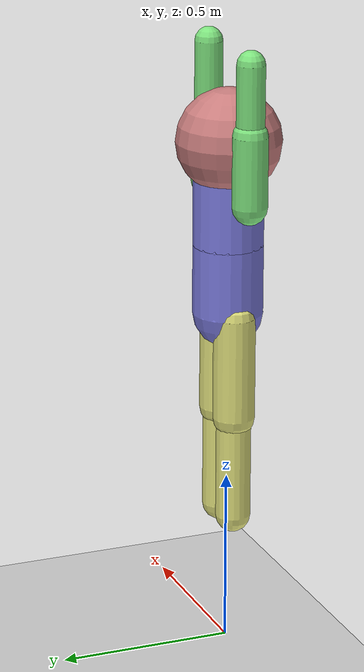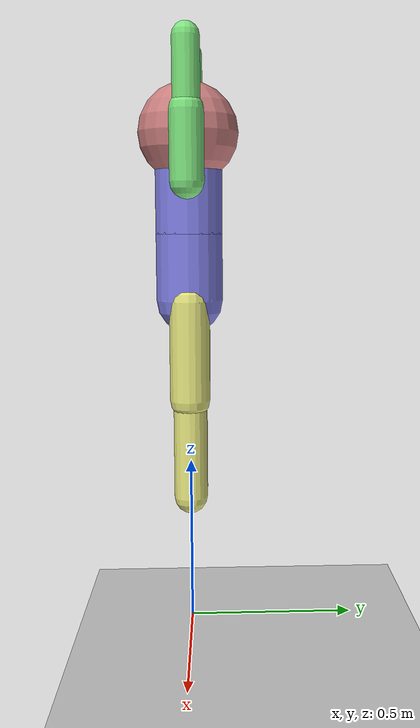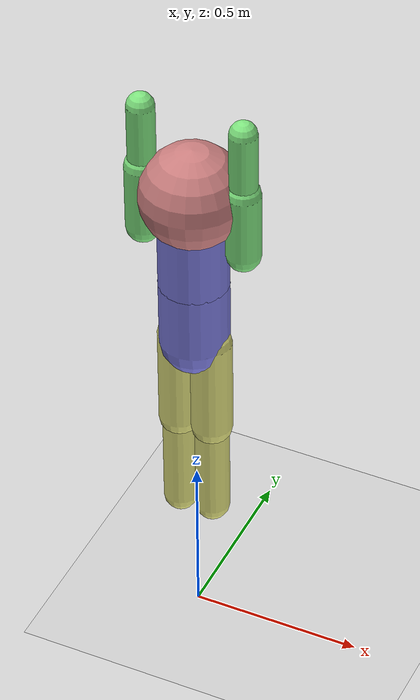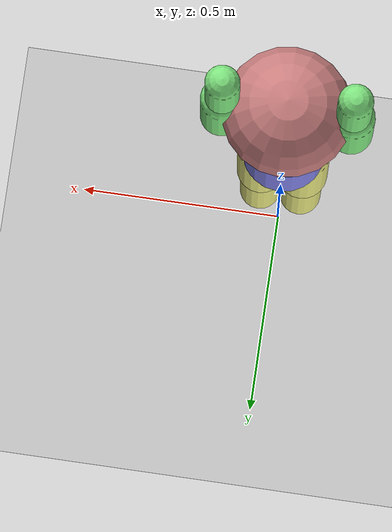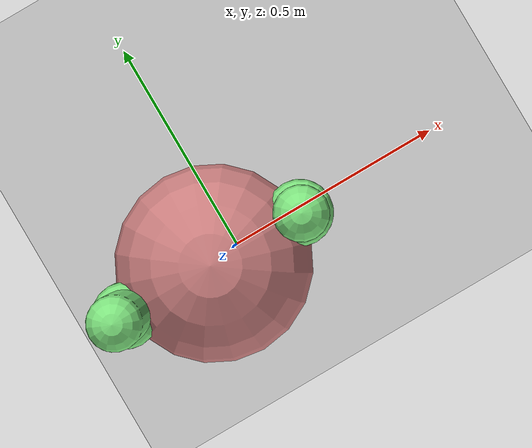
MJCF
<mujoco model="simple_humanoid">
  <compiler angle="radian" inertiafromgeom="true"/>
  <option timestep="0.005" gravity="0 0 -9.81" iterations="100" tolerance="1e-6"/>
  <visual>
    <global azimuth="135" elevation="-30" perspective="0.01"/>
  </visual>
  <worldbody>
    <light pos="0 0 5" dir="0 0 -1" diffuse="1 1 1" specular="0.1 0.1 0.1"/>
    <geom name="floor" type="plane" size="10 10 0.1" pos="0 0 0" rgba="0.8 0.8 0.8 1" condim="3"/>

    <!-- 机器人主体 -->
    <body name="pelvis" pos="0 0 1.0">
      <joint name="root" type="free"/>
      <geom name="pelvis_geom" type="capsule" size="0.1" fromto="0 0 0 0 0 0.2" rgba="0.5 0.5 0.9 1" mass="5"/>

      <body name="torso" pos="0 0 0.2">
        <geom name="torso_geom" type="capsule" size="0.1" fromto="0 0 0 0 0 0.3" rgba="0.5 0.5 0.9 1" mass="8"/>

        <body name="head" pos="0 0 0.3">
          <geom name="head_geom" type="sphere" size="0.15" pos="0 0 0" rgba="0.8 0.5 0.5 1" mass="3"/>
        </body>

        <!-- 左手臂 -->
        <body name="left_arm" pos="0.15 0 0.15">
          <joint name="left_shoulder" type="hinge" axis="1 0 0" range="-1.57 1.57"/>
          <geom name="left_upper_arm" type="capsule" size="0.05" fromto="0 0 0 0 0 0.2" rgba="0.5 0.9 0.5 1" mass="1"/>

          <body name="left_forearm" pos="0 0 0.2">
            <joint name="left_elbow" type="hinge" axis="1 0 0" range="-1.57 0"/>
            <geom name="left_forearm_geom" type="capsule" size="0.04" fromto="0 0 0 0 0 0.2" rgba="0.5 0.9 0.5 1" mass="0.5"/>
          </body>
        </body>

        <!-- 右手臂 -->
        <body name="right_arm" pos="-0.15 0 0.15">
          <joint name="right_shoulder" type="hinge" axis="1 0 0" range="-1.57 1.57"/>
          <geom name="right_upper_arm" type="capsule" size="0.05" fromto="0 0 0 0 0 0.2" rgba="0.5 0.9 0.5 1" mass="1"/>

          <body name="right_forearm" pos="0 0 0.2">
            <joint name="right_elbow" type="hinge" axis="1 0 0" range="-1.57 0"/>
            <geom name="right_forearm_geom" type="capsule" size="0.04" fromto="0 0 0 0 0 0.2" rgba="0.5 0.9 0.5 1" mass="0.5"/>
          </body>
        </body>

        <!-- 左腿部 -->
        <body name="left_leg" pos="0.05 0 -0.2">
          <joint name="left_hip" type="hinge" axis="1 0 0" range="-1.57 1.57"/>
          <geom name="left_thigh" type="capsule" size="0.06" fromto="0 0 0 0 0 -0.3" rgba="0.9 0.9 0.5 1" mass="2"/>

          <body name="left_calf" pos="0 0 -0.3">
            <joint name="left_knee" type="hinge" axis="1 0 0" range="0 1.57"/>
            <geom name="left_calf_geom" type="capsule" size="0.05" fromto="0 0 0 0 0 -0.3" rgba="0.9 0.9 0.5 1" mass="1"/>
          </body>
        </body>

        <!-- 右腿部 -->
        <body name="right_leg" pos="-0.05 0 -0.2">
          <joint name="right_hip" type="hinge" axis="1 0 0" range="-1.57 1.57"/>
          <geom name="right_thigh" type="capsule" size="0.06" fromto="0 0 0 0 0 -0.3" rgba="0.9 0.9 0.5 1" mass="2"/>

          <body name="right_calf" pos="0 0 -0.3">
            <joint name="right_knee" type="hinge" axis="1 0 0" range="0 1.57"/>
            <geom name="right_calf_geom" type="capsule" size="0.05" fromto="0 0 0 0 0 -0.3" rgba="0.9 0.9 0.5 1" mass="1"/>
          </body>
        </body>
      </body>
    </body>
  </worldbody>

  <!-- 执行器定义（简化命名，与关节名一致） -->
  <actuator>
    <!-- 手臂关节电机 -->
    <motor name="left_shoulder" joint="left_shoulder" ctrlrange="-1.57 1.57" gear="20"/>
    <motor name="right_shoulder" joint="right_shoulder" ctrlrange="-1.57 1.57" gear="20"/>
    <motor name="left_elbow" joint="left_elbow" ctrlrange="-1.57 0" gear="15"/>
    <motor name="right_elbow" joint="right_elbow" ctrlrange="-1.57 0" gear="15"/>

    <!-- 腿部关节电机 -->
    <motor name="left_hip" joint="left_hip" ctrlrange="-1.57 1.57" gear="25"/>
    <motor name="right_hip" joint="right_hip" ctrlrange="-1.57 1.57" gear="25"/>
    <motor name="left_knee" joint="left_knee" ctrlrange="0 1.57" gear="20"/>
    <motor name="right_knee" joint="right_knee" ctrlrange="0 1.57" gear="20"/>

    <!-- 阻尼 -->
    <damping joint="left_shoulder" damping="0.5"/>
    <damping joint="right_shoulder" damping="0.5"/>
    <damping joint="left_elbow" damping="0.5"/>
    <damping joint="right_elbow" damping="0.5"/>
    <damping joint="left_hip" damping="0.8"/>
    <damping joint="right_hip" damping="0.8"/>
    <damping joint="left_knee" damping="0.8"/>
    <damping joint="right_knee" damping="0.8"/>
  </actuator>

  <!-- 固定骨盆防止倾倒 -->
  <equality>
    <weld body1="floor" body2="pelvis" solref="0.01 1" solimp="0.9 0.95 0.001"/>
  </equality>
</mujoco>
